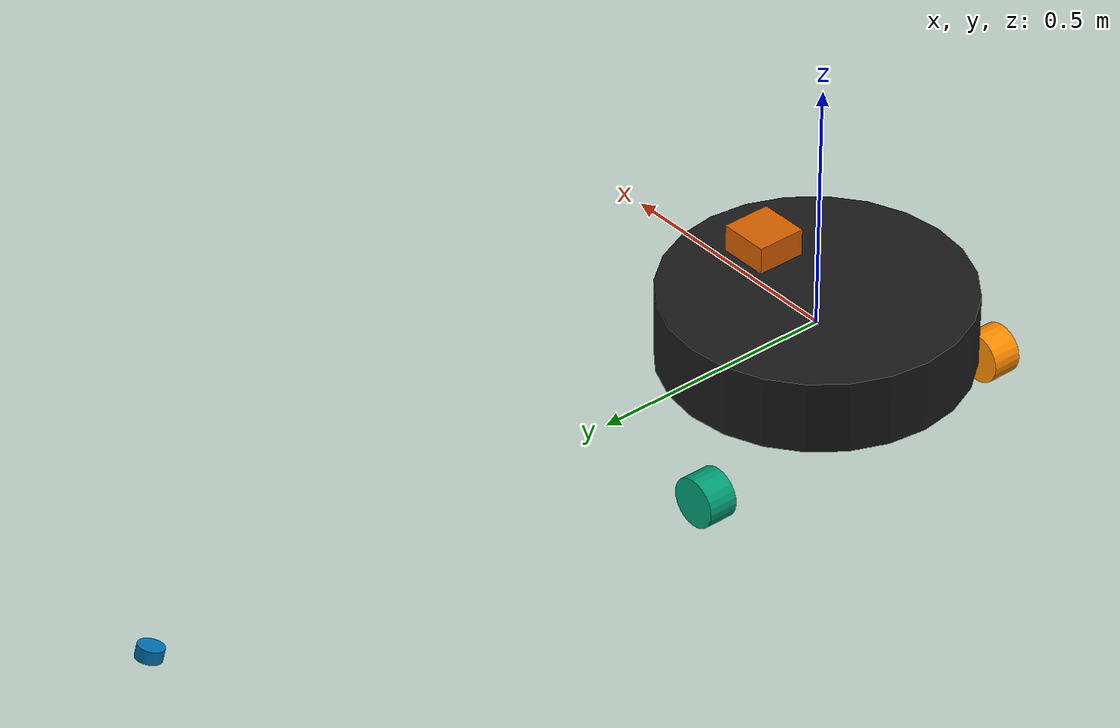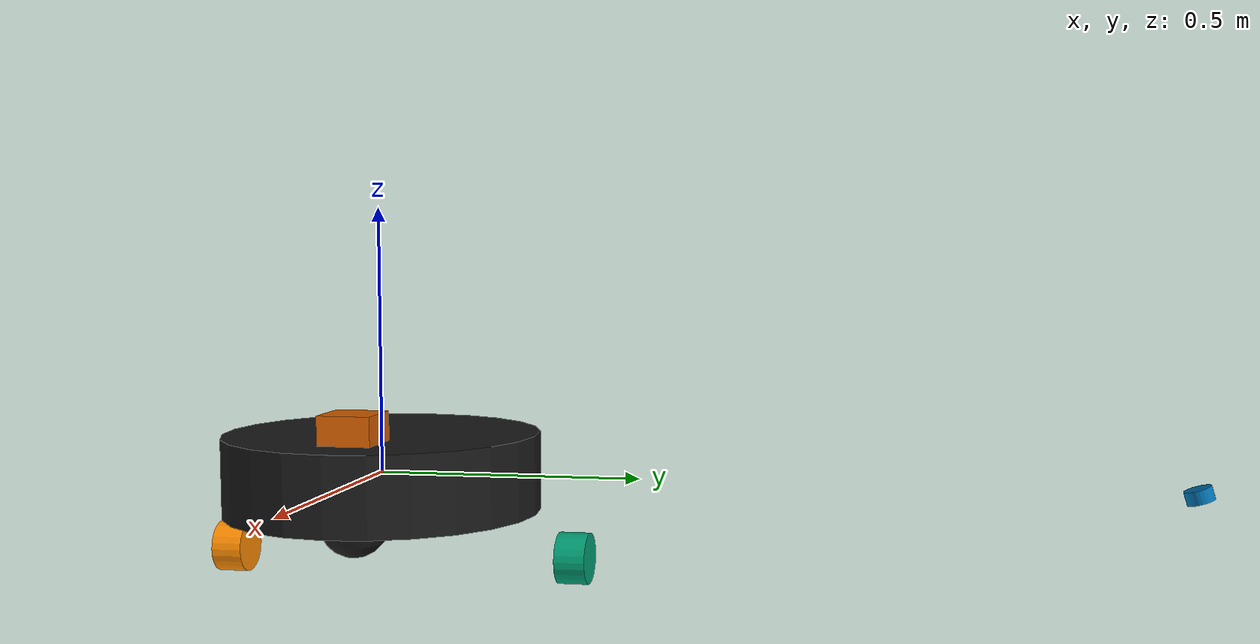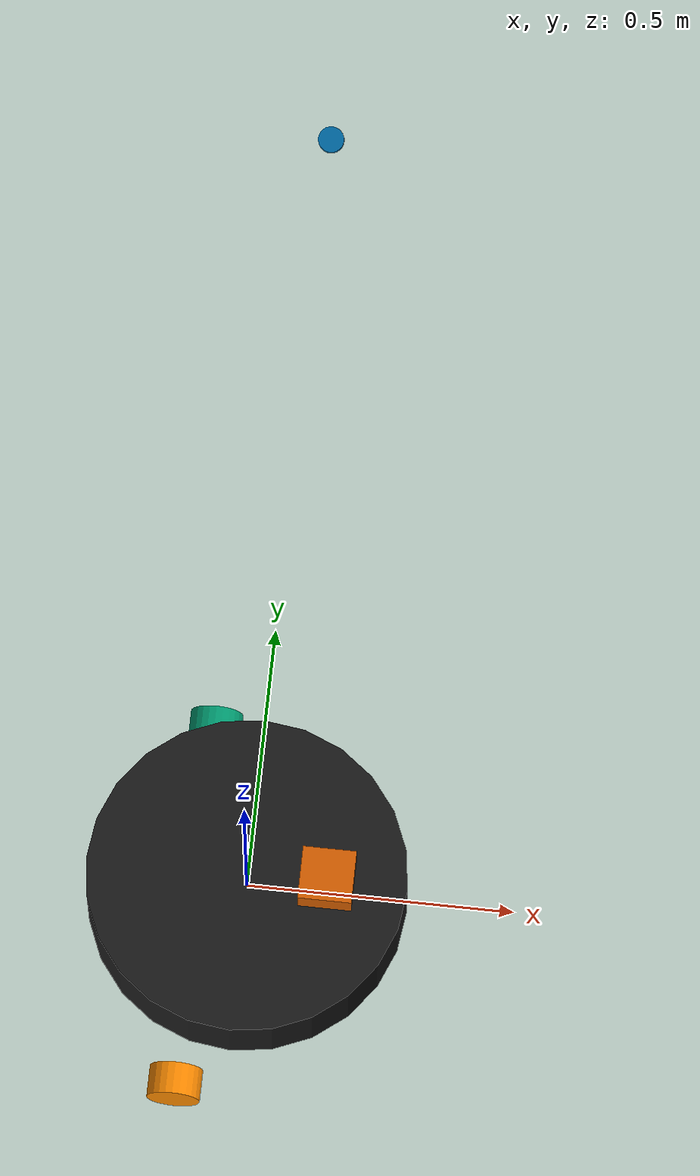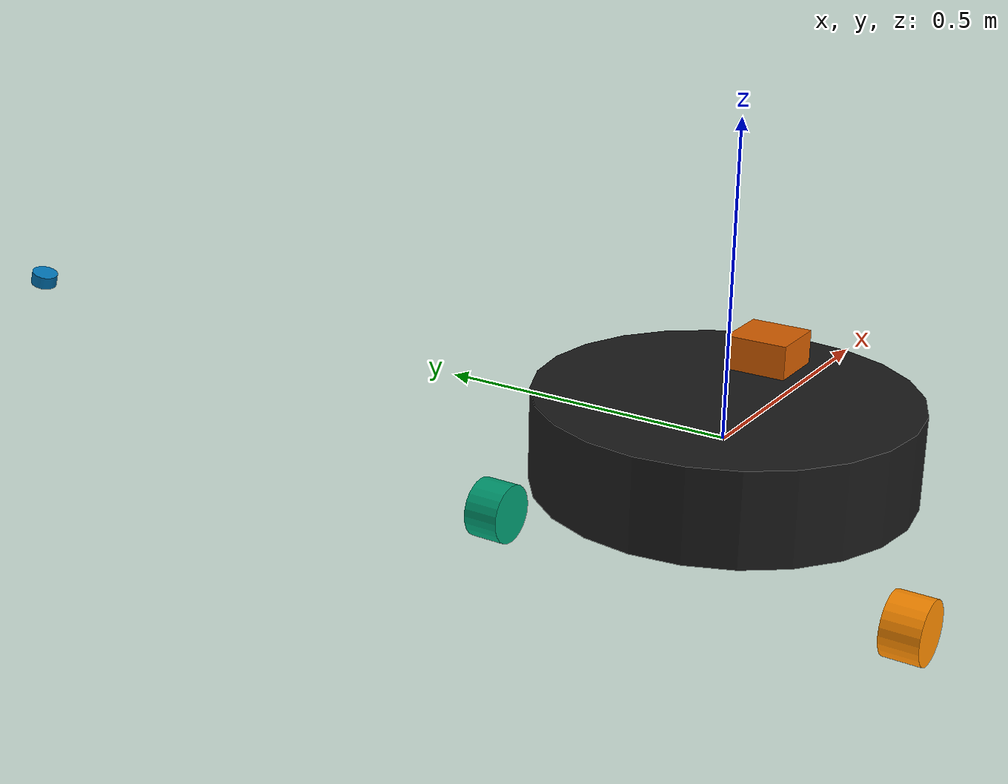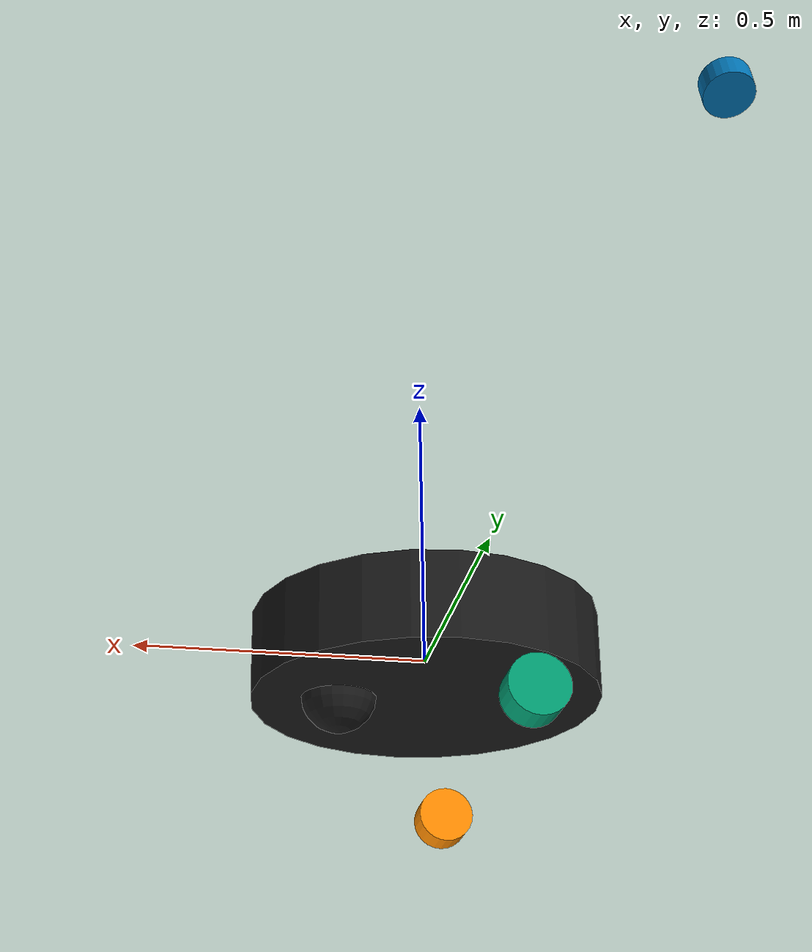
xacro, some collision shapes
<?xml version="1.0" ?>
<!-- |    This document was autogenerated by xacro from /home/robond/catkin_ws/src/udacity_bot/urdf/udacity_bot.xacro | -->
<!-- |    EDITING THIS FILE BY HAND IS NOT RECOMMENDED                                 | -->
<robot name="udacity_bot" xmlns:xacro="http://www.ros.org/wiki/xacro">
  <link name="robot_footprint"/>
  <link name="chassis">
    <pose>0 0 0.1 0 0 0</pose>
    <inertial>
      <mass value="15.0"/>
      <origin rpy=" 0 0 0" xyz="0.0 0 0"/>
      <inertia ixx="0.2125" ixy="0" ixz="0" iyy="0.0625" iyz="0" izz="0.25"/>
    </inertial>
    <collision name="chassis_collision">
      <origin rpy=" 0 0 0" xyz="0 0 0"/>
      <geometry>
        <cylinder length=".15" radius=".3"/>
      </geometry>
    </collision>
    <visual name="chassis_visual">
      <origin rpy=" 0 0 0" xyz="0 0 0"/>
      <geometry>
        <cylinder length=".15" radius=".3"/>
      </geometry>
      <material name="black_metal">
        <color rgba="0.1 0.1 0.1 1"/>
      </material>
    </visual>
    <collision name="front_caster_collision">
      <origin rpy=" 0 0 0" xyz="0.15 0 -0.07"/>
      <geometry>
        <sphere radius="0.065"/>
      </geometry>
      <surface>
        <friction>
          <ode>
            <mu>0</mu>
            <mu2>0</mu2>
            <slip1>1.0</slip1>
            <slip2>1.0</slip2>
          </ode>
        </friction>
      </surface>
    </collision>
    <visual name="front_caster_visual">
      <origin rpy=" 0 0 0" xyz="0.15 0 -0.07"/>
      <geometry>
        <sphere radius="0.065"/>
      </geometry>
      <material name="black_metal">
        <color rgba="0.1 0.1 0.1 1"/>
      </material>
    </visual>
  </link>
  <link name="left_wheel">
    <inertial>
      <mass value="5.0"/>
      <origin rpy=" 0 0 0" xyz="0.0 0 0"/>
      <inertia ixx="0.046" ixy="0" ixz="0" iyy="0.046" iyz="0" izz="0.025"/>
    </inertial>
    <collision name="left_wheel_collision">
      <origin rpy="0 1.5707 1.5707" xyz="-0.1 0.2 -0.075"/>
      <geometry>
        <cylinder length=".06" radius=".05"/>
      </geometry>
    </collision>
    <visual name="left_wheel_visual">
      <origin rpy="0 1.5707 1.5707" xyz="-0.1 0.2 -0.075"/>
      <geometry>
        <cylinder length=".06" radius=".05"/>
      </geometry>
    </visual>
    <material name="gold">
      <color rgba="1 0.549 0 1"/>
    </material>
  </link>
  <link name="right_wheel">
    <inertial>
      <mass value="5.0"/>
      <origin rpy=" 0 0 0" xyz="0.0 0 0"/>
      <inertia ixx="0.046" ixy="0" ixz="0" iyy="0.046" iyz="0" izz="0.025"/>
    </inertial>
    <collision name="right_wheel_collision">
      <origin rpy="0 1.5707 1.5707" xyz="-0.1 -0.2 -0.075"/>
      <geometry>
        <cylinder length=".06" radius=".05"/>
      </geometry>
    </collision>
    <visual name="right_wheel_visual">
      <origin rpy="0 1.5707 1.5707" xyz="-0.1 -0.2 -0.075"/>
      <geometry>
        <cylinder length=".06" radius=".05"/>
      </geometry>
      <material name="gold">
        <color rgba="1 0.549 0 1"/>
      </material>
    </visual>
  </link>
  <link name="camera">
    <inertial>
      <mass value="0.1"/>
      <origin rpy=" 0 0 0" xyz="0.0 0 0"/>
      <inertia ixx="1e-6" ixy="0" ixz="0" iyy="1e-6" iyz="0" izz="1e-6"/>
    </inertial>
    <collision name="camera_collision">
      <origin rpy=" 0 0 0" xyz="0 0 0"/>
      <geometry>
        <cylinder length=".025" radius=".025"/>
      </geometry>
    </collision>
    <visual name="camera_visual">
      <origin rpy=" 0 0 0" xyz="0 0 0"/>
      <geometry>
        <cylinder length=".025" radius=".025"/>
      </geometry>
    </visual>
    <material name="black_metal">
      <color rgba="0.1 0.1 0.1 1"/>
    </material>
  </link>
  <link name="hokuyo">
    <inertial>
      <mass value="0.1"/>
      <origin rpy=" 0 0 0" xyz="0.0 0 0"/>
      <inertia ixx="1e-6" ixy="0" ixz="0" iyy="1e-6" iyz="0" izz="1e-6"/>
    </inertial>
    <collision name="hokuyo_collision">
      <origin rpy=" 0 0 0" xyz="0 0 0"/>
      <geometry>
        <box size=".1 .1 .1"/>
      </geometry>
    </collision>
    <visual name="hokuyo_visual">
      <origin rpy=" 0 0 0" xyz="0 0 0"/>
      <geometry>
        <mesh filename="package://udacity_bot/meshes/hokuyo.dae"/>
      </geometry>
    </visual>
    <material name="black_metal">
      <color rgba="0.1 0.1 0.1 1"/>
    </material>
  </link>
  <joint name="robot_footprint_joint" type="fixed">
    <origin rpy="0 0 0" xyz="0 0 0"/>
    <parent link="robot_footprint"/>
    <child link="chassis"/>
  </joint>
  <joint name="left_wheel_hinge" type="continuous">
    <origin rpy="0 0 0" xyz="0 0.15 -0.1"/>
    <parent link="chassis"/>
    <child link="left_wheel"/>
    <axis rpy="0 0 0" xyz="0 1 0"/>
    <limit effort="10000" velocity="1000"/>
    <joint_properties damping="1.0" friction="1.0"/>
  </joint>
  <joint name="right_wheel_hinge" type="continuous">
    <origin rpy="0 0 0" xyz="0 -0.15 -0.1"/>
    <parent link="chassis"/>
    <child link="right_wheel"/>
    <axis rpy="0 0 0" xyz="0 1 0"/>
    <limit effort="10000" velocity="1000"/>
    <joint_properties damping="1.0" friction="1.0"/>
  </joint>
  <joint name="camera_joint" type="fixed">
    <origin rpy="0.3 0 0" xyz="0 1.5 0"/>
    <parent link="chassis"/>
    <child link="camera"/>
  </joint>
  <joint name="hokuyo_joint" type="fixed">
    <origin rpy=" 0 0 0" xyz="0.15 0 0.08"/>
    <parent link="chassis"/>
    <child link="hokuyo"/>
  </joint>
</robot>
